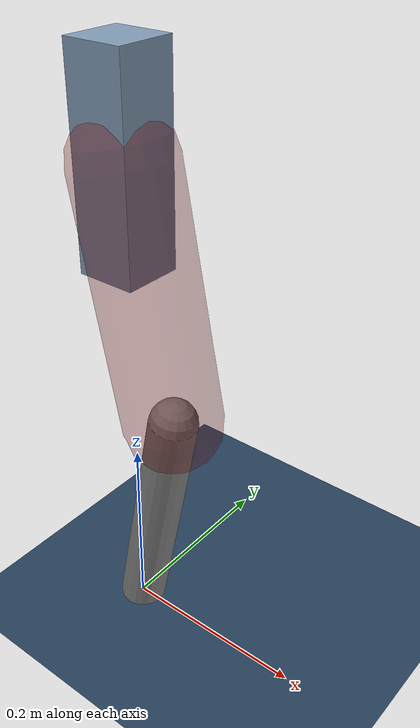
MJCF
<mujoco model="Hopper2D">
	<compiler inertiafromgeom="true" angle="radian" />
	<option timestep="0.001" integrator="implicit" cone="elliptic" solver="Newton" tolerance="1e-10" />

	<default>
		<geom contype="1" conaffinity="1" condim="3" friction="2 0.005 0.0001" solref="0.005 1" />
		<joint limited="true" damping="0.1" />
	</default>

	<asset>
		<texture name="skybox" type="skybox" builtin="gradient" rgb1=".4 .6 .8" rgb2="0 0 0" width="800" height="800" />
		<texture name="grid" type="2d" builtin="checker" rgb1=".1 .2 .3" rgb2=".2 .3 .4" width="300" height="300" mark="edge" markrgb=".2 .3 .4" />
		<material name="ground" texture="grid" texrepeat="1 1" texuniform="true" reflectance="0.1" />
		<material name="leg" rgba="0.5 0.6 0.7 1" />
	</asset>

	<worldbody>

		<geom name="floor" type="plane" size="5 5 0.25" material="ground" />

		<light directional="false" diffuse="0.8 0.8 0.8" specular="0.3 0.3 0.3" pos="0 0 2" dir="0 0 -1" />
		<light mode="targetbodycom" target="base" directional="false" diffuse="0.8 0.8 0.8" specular="0.3 0.3 0.3" pos="0 0 2" dir="0 0 -1" />

		<camera name="fixed" pos="0 -2 1" xyaxes="1 0 0 0 0 1" />
		<camera name="tracking" mode="trackcom" pos="0 -3 1" />

		<body name="root" pos="0 0 0.5074877221846049">
			<joint name="slide_x" type="slide" axis="1 0 0" range="-100 100" />
			<joint name="slide_z" type="slide" axis="0 0 1" range="0 10" />

			<body name="base" pos="0 0 0">
				<geom name="torso" type="box" size="0.03 0.03 0.1" mass="3.7460000000000004" material="leg" />

				<body name="link1" pos="0 0 0" euler="0 1.367354880897792 0">
					<joint type="hinge" axis="0 -1 0" pos="0 0 0" name="hinge1" limited="true" range="-3.14 3.14" stiffness="0" damping="0.1" />
					<geom name="thigh" type="capsule" fromto="0 0 0 0.25041071932621617 0 0" size="0.05" rgba="0.5 0 0 0.3" mass="0.8574678702481621" />

					<body name="link2" pos="0.25041071932621617 0 0" euler="0 0.39402622930691117 0">
						<joint type="hinge" axis="0 -1 0" pos="0 0 0" name="hinge2" limited="true" range="-3.14 3.14" stiffness="0" damping="0.1" />
						<geom name="shank" type="capsule" fromto="0 0 0 0.26707700285838876 0 0" size="0.025" mass="0.456561602286711" />

					</body>
				</body>
			</body>
		</body>
	</worldbody>

	<actuator>
		<motor name="torque1" joint="hinge1" ctrlrange="-170.8818844157187 170.8818844157187" ctrllimited="true" gear="1" />
		<motor name="torque2" joint="hinge2" ctrlrange="-119.23151615371324 119.23151615371324" ctrllimited="true" gear="1" />
	</actuator>
</mujoco>
